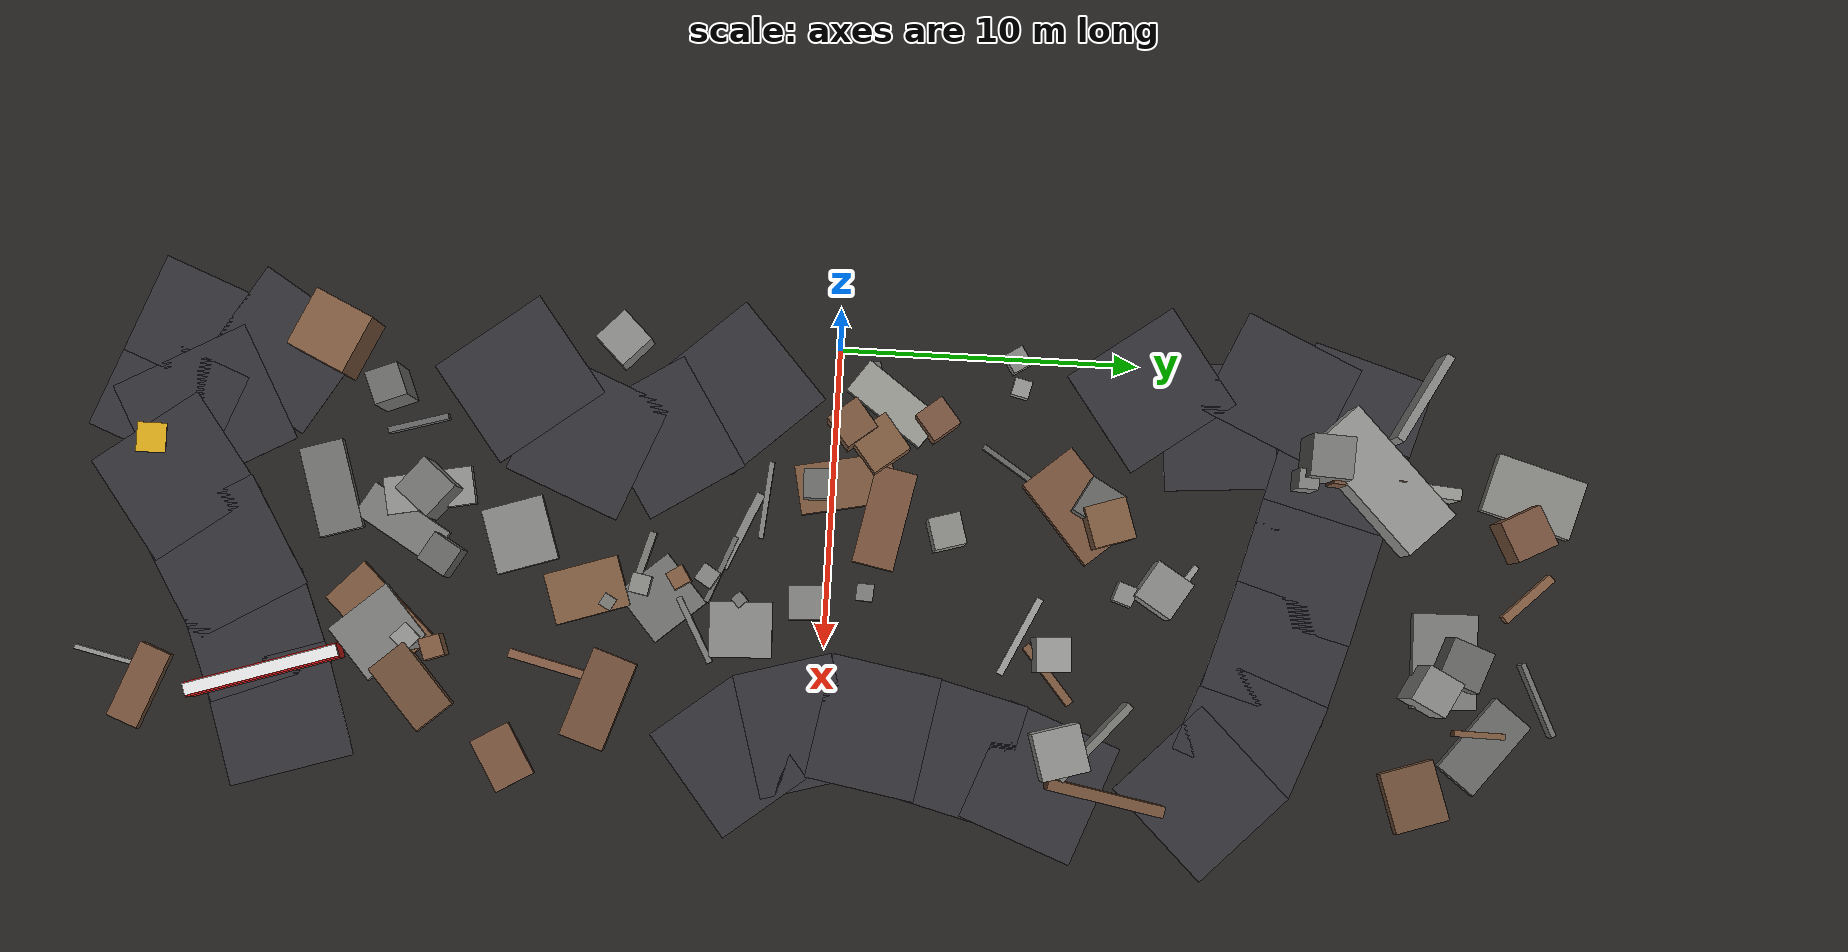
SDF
<sdf version="1.6">
 <world name="navitas_arena">
  <model name="ground_plane">
   <static>true</static>
   <link name="link">
    <collision name="collision">
     <geometry><plane><normal>0 0 1</normal><size>400 400</size></plane></geometry>
     <surface><friction><ode><mu>0.750</mu><mu2>0.750</mu2></ode></friction></surface>
    </collision>
    <visual name="visual">
     <cast_shadows>false</cast_shadows>
     <geometry><plane><normal>0 0 1</normal><size>400 400</size></plane></geometry>
     <material><ambient>0.150 0.140 0.130 1</ambient><diffuse>0.150 0.140 0.130 1</diffuse></material>
    </visual>
   </link>
  </model>
  <model name="road_orta_1_0">
   <static>true</static>
   <pose>2.955 -22.494 0.040 0 0 2.765</pose>
   <link name="link">
    <collision name="col"><geometry><box><size>3.653 4.250 0.020</size></box></geometry></collision>
    <visual name="vis">
     <geometry><box><size>3.653 4.250 0.020</size></box></geometry>
     <material><ambient>0.20 0.20 0.22 1</ambient><diffuse>0.20 0.20 0.22 1</diffuse></material>
    </visual>
   </link>
  </model>
  <model name="road_orta_1_1">
   <static>true</static>
   <pose>0.465 -21.514 0.040 0 0 2.768</pose>
   <link name="link">
    <collision name="col"><geometry><box><size>3.497 4.250 0.020</size></box></geometry></collision>
    <visual name="vis">
     <geometry><box><size>3.497 4.250 0.020</size></box></geometry>
     <material><ambient>0.20 0.20 0.22 1</ambient><diffuse>0.20 0.20 0.22 1</diffuse></material>
    </visual>
   </link>
  </model>
  <model name="road_orta_2_0">
   <static>true</static>
   <pose>3.282 -21.250 0.040 0 0 2.069</pose>
   <link name="link">
    <collision name="col"><geometry><box><size>4.885 4.250 0.020</size></box></geometry></collision>
    <visual name="vis">
     <geometry><box><size>4.885 4.250 0.020</size></box></geometry>
     <material><ambient>0.20 0.20 0.22 1</ambient><diffuse>0.20 0.20 0.22 1</diffuse></material>
    </visual>
   </link>
  </model>
  <model name="road_orta_2_1">
   <static>true</static>
   <pose>1.040 -18.696 0.040 0 0 2.584</pose>
   <link name="link">
    <collision name="col"><geometry><box><size>3.938 4.250 0.020</size></box></geometry></collision>
    <visual name="vis">
     <geometry><box><size>3.938 4.250 0.020</size></box></geometry>
     <material><ambient>0.20 0.20 0.22 1</ambient><diffuse>0.20 0.20 0.22 1</diffuse></material>
    </visual>
   </link>
  </model>
  <model name="road_orta_2_5">
   <static>true</static>
   <pose>1.578 -10.732 0.040 0 0 0.651</pose>
   <link name="link">
    <collision name="col"><geometry><box><size>3.948 4.250 0.020</size></box></geometry></collision>
    <visual name="vis">
     <geometry><box><size>3.948 4.250 0.020</size></box></geometry>
     <material><ambient>0.20 0.20 0.22 1</ambient><diffuse>0.20 0.20 0.22 1</diffuse></material>
    </visual>
   </link>
  </model>
  <model name="road_orta_2_6">
   <static>true</static>
   <pose>3.400 -8.321 0.040 0 0 1.182</pose>
   <link name="link">
    <collision name="col"><geometry><box><size>4.116 4.250 0.020</size></box></geometry></collision>
    <visual name="vis">
     <geometry><box><size>4.116 4.250 0.020</size></box></geometry>
     <material><ambient>0.20 0.20 0.22 1</ambient><diffuse>0.20 0.20 0.22 1</diffuse></material>
    </visual>
   </link>
  </model>
  <model name="road_orta_2_7">
   <static>true</static>
   <pose>3.268 -5.667 0.040 0 0 2.138</pose>
   <link name="link">
    <collision name="col"><geometry><box><size>3.666 4.250 0.020</size></box></geometry></collision>
    <visual name="vis">
     <geometry><box><size>3.666 4.250 0.020</size></box></geometry>
     <material><ambient>0.20 0.20 0.22 1</ambient><diffuse>0.20 0.20 0.22 1</diffuse></material>
    </visual>
   </link>
  </model>
  <model name="road_orta_2_8">
   <static>true</static>
   <pose>1.467 -3.333 0.040 0 0 2.307</pose>
   <link name="link">
    <collision name="col"><geometry><box><size>4.049 4.250 0.020</size></box></geometry></collision>
    <visual name="vis">
     <geometry><box><size>4.049 4.250 0.020</size></box></geometry>
     <material><ambient>0.20 0.20 0.22 1</ambient><diffuse>0.20 0.20 0.22 1</diffuse></material>
    </visual>
   </link>
  </model>
  <model name="road_orta_2_14">
   <static>true</static>
   <pose>0.761 10.541 0.040 0 0 0.631</pose>
   <link name="link">
    <collision name="col"><geometry><box><size>3.898 4.250 0.020</size></box></geometry></collision>
    <visual name="vis">
     <geometry><box><size>3.898 4.250 0.020</size></box></geometry>
     <material><ambient>0.20 0.20 0.22 1</ambient><diffuse>0.20 0.20 0.22 1</diffuse></material>
    </visual>
   </link>
  </model>
  <model name="road_orta_2_15">
   <static>true</static>
   <pose>1.862 12.875 0.040 0 0 1.646</pose>
   <link name="link">
    <collision name="col"><geometry><box><size>3.807 4.250 0.020</size></box></geometry></collision>
    <visual name="vis">
     <geometry><box><size>3.807 4.250 0.020</size></box></geometry>
     <material><ambient>0.20 0.20 0.22 1</ambient><diffuse>0.20 0.20 0.22 1</diffuse></material>
    </visual>
   </link>
  </model>
  <model name="road_orta_2_16">
   <static>true</static>
   <pose>0.492 14.896 0.040 0 0 2.716</pose>
   <link name="link">
    <collision name="col"><geometry><box><size>3.670 4.250 0.020</size></box></geometry></collision>
    <visual name="vis">
     <geometry><box><size>3.670 4.250 0.020</size></box></geometry>
     <material><ambient>0.20 0.20 0.22 1</ambient><diffuse>0.20 0.20 0.22 1</diffuse></material>
    </visual>
   </link>
  </model>
  <model name="road_orta_3_0">
   <static>true</static>
   <pose>5.495 -22.070 0.040 0 0 0.636</pose>
   <link name="link">
    <collision name="col"><geometry><box><size>4.033 4.250 0.020</size></box></geometry></collision>
    <visual name="vis">
     <geometry><box><size>4.033 4.250 0.020</size></box></geometry>
     <material><ambient>0.20 0.20 0.22 1</ambient><diffuse>0.20 0.20 0.22 1</diffuse></material>
    </visual>
   </link>
  </model>
  <model name="road_orta_3_1">
   <static>true</static>
   <pose>8.142 -20.320 0.040 0 0 0.534</pose>
   <link name="link">
    <collision name="col"><geometry><box><size>4.122 4.250 0.020</size></box></geometry></collision>
    <visual name="vis">
     <geometry><box><size>4.122 4.250 0.020</size></box></geometry>
     <material><ambient>0.20 0.20 0.22 1</ambient><diffuse>0.20 0.20 0.22 1</diffuse></material>
    </visual>
   </link>
  </model>
  <model name="road_orta_3_2">
   <static>true</static>
   <pose>10.676 -19.058 0.040 0 0 0.368</pose>
   <link name="link">
    <collision name="col"><geometry><box><size>3.359 4.250 0.020</size></box></geometry></collision>
    <visual name="vis">
     <geometry><box><size>3.359 4.250 0.020</size></box></geometry>
     <material><ambient>0.20 0.20 0.22 1</ambient><diffuse>0.20 0.20 0.22 1</diffuse></material>
    </visual>
   </link>
  </model>
  <model name="road_orta_3_3">
   <static>true</static>
   <pose>13.263 -18.160 0.040 0 0 0.306</pose>
   <link name="link">
    <collision name="col"><geometry><box><size>3.919 4.250 0.020</size></box></geometry></collision>
    <visual name="vis">
     <geometry><box><size>3.919 4.250 0.020</size></box></geometry>
     <material><ambient>0.20 0.20 0.22 1</ambient><diffuse>0.20 0.20 0.22 1</diffuse></material>
    </visual>
   </link>
  </model>
  <model name="road_orta_3_11">
   <static>true</static>
   <pose>13.849 -3.000 0.040 0 0 2.242</pose>
   <link name="link">
    <collision name="col"><geometry><box><size>3.454 4.250 0.020</size></box></geometry></collision>
    <visual name="vis">
     <geometry><box><size>3.454 4.250 0.020</size></box></geometry>
     <material><ambient>0.20 0.20 0.22 1</ambient><diffuse>0.20 0.20 0.22 1</diffuse></material>
    </visual>
   </link>
  </model>
  <model name="road_orta_3_12">
   <static>true</static>
   <pose>12.713 -0.800 0.040 0 0 1.849</pose>
   <link name="link">
    <collision name="col"><geometry><box><size>3.396 4.250 0.020</size></box></geometry></collision>
    <visual name="vis">
     <geometry><box><size>3.396 4.250 0.020</size></box></geometry>
     <material><ambient>0.20 0.20 0.22 1</ambient><diffuse>0.20 0.20 0.22 1</diffuse></material>
    </visual>
   </link>
  </model>
  <model name="road_orta_3_13">
   <static>true</static>
   <pose>12.618 1.800 0.040 0 0 1.395</pose>
   <link name="link">
    <collision name="col"><geometry><box><size>3.744 4.250 0.020</size></box></geometry></collision>
    <visual name="vis">
     <geometry><box><size>3.744 4.250 0.020</size></box></geometry>
     <material><ambient>0.20 0.20 0.22 1</ambient><diffuse>0.20 0.20 0.22 1</diffuse></material>
    </visual>
   </link>
  </model>
  <model name="road_orta_3_14">
   <static>true</static>
   <pose>13.224 4.600 0.040 0 0 1.321</pose>
   <link name="link">
    <collision name="col"><geometry><box><size>3.789 4.250 0.020</size></box></geometry></collision>
    <visual name="vis">
     <geometry><box><size>3.789 4.250 0.020</size></box></geometry>
     <material><ambient>0.20 0.20 0.22 1</ambient><diffuse>0.20 0.20 0.22 1</diffuse></material>
    </visual>
   </link>
  </model>
  <model name="road_orta_3_15">
   <static>true</static>
   <pose>14.140 7.460 0.040 0 0 1.205</pose>
   <link name="link">
    <collision name="col"><geometry><box><size>4.027 4.250 0.020</size></box></geometry></collision>
    <visual name="vis">
     <geometry><box><size>4.027 4.250 0.020</size></box></geometry>
     <material><ambient>0.20 0.20 0.22 1</ambient><diffuse>0.20 0.20 0.22 1</diffuse></material>
    </visual>
   </link>
  </model>
  <model name="road_orta_3_17">
   <static>true</static>
   <pose>14.214 12.872 0.040 0 0 2.372</pose>
   <link name="link">
    <collision name="col"><geometry><box><size>4.097 4.250 0.020</size></box></geometry></collision>
    <visual name="vis">
     <geometry><box><size>4.097 4.250 0.020</size></box></geometry>
     <material><ambient>0.20 0.20 0.22 1</ambient><diffuse>0.20 0.20 0.22 1</diffuse></material>
    </visual>
   </link>
  </model>
  <model name="road_orta_3_18">
   <static>true</static>
   <pose>11.915 14.423 0.040 0 0 2.777</pose>
   <link name="link">
    <collision name="col"><geometry><box><size>3.362 4.250 0.020</size></box></geometry></collision>
    <visual name="vis">
     <geometry><box><size>3.362 4.250 0.020</size></box></geometry>
     <material><ambient>0.20 0.20 0.22 1</ambient><diffuse>0.20 0.20 0.22 1</diffuse></material>
    </visual>
   </link>
  </model>
  <model name="road_orta_3_19">
   <static>true</static>
   <pose>9.399 15.263 0.040 0 0 2.857</pose>
   <link name="link">
    <collision name="col"><geometry><box><size>3.747 4.250 0.020</size></box></geometry></collision>
    <visual name="vis">
     <geometry><box><size>3.747 4.250 0.020</size></box></geometry>
     <material><ambient>0.20 0.20 0.22 1</ambient><diffuse>0.20 0.20 0.22 1</diffuse></material>
    </visual>
   </link>
  </model>
  <model name="road_orta_3_20">
   <static>true</static>
   <pose>6.593 16.038 0.040 0 0 2.887</pose>
   <link name="link">
    <collision name="col"><geometry><box><size>3.875 4.250 0.020</size></box></geometry></collision>
    <visual name="vis">
     <geometry><box><size>3.875 4.250 0.020</size></box></geometry>
     <material><ambient>0.20 0.20 0.22 1</ambient><diffuse>0.20 0.20 0.22 1</diffuse></material>
    </visual>
   </link>
  </model>
  <model name="road_orta_3_21">
   <static>true</static>
   <pose>3.784 16.775 0.040 0 0 2.883</pose>
   <link name="link">
    <collision name="col"><geometry><box><size>3.734 4.250 0.020</size></box></geometry></collision>
    <visual name="vis">
     <geometry><box><size>3.734 4.250 0.020</size></box></geometry>
     <material><ambient>0.20 0.20 0.22 1</ambient><diffuse>0.20 0.20 0.22 1</diffuse></material>
    </visual>
   </link>
  </model>
  <model name="road_orta_3_22">
   <static>true</static>
   <pose>1.140 17.522 0.040 0 0 2.849</pose>
   <link name="link">
    <collision name="col"><geometry><box><size>3.562 4.250 0.020</size></box></geometry></collision>
    <visual name="vis">
     <geometry><box><size>3.562 4.250 0.020</size></box></geometry>
     <material><ambient>0.20 0.20 0.22 1</ambient><diffuse>0.20 0.20 0.22 1</diffuse></material>
    </visual>
   </link>
  </model>
  <model name="bar_orta_3">
   <static>true</static>
   <pose>11.823 -18.615 0.500 0 0 1.880</pose>
   <link name="link">
    <collision name="col"><geometry><box><size>5.250 0.500 1.000</size></box></geometry></collision>
    <visual name="vis">
     <geometry><box><size>5.250 0.500 1.000</size></box></geometry>
     <material><ambient>0.85 0.10 0.10 1</ambient><diffuse>0.85 0.10 0.10 1</diffuse></material>
    </visual>
   </link>
  </model>
  <model name="bar_orta_3b">
   <static>true</static>
   <pose>11.823 -18.615 1.000 0 0 1.880</pose>
   <link name="link">
    <collision name="col"><geometry><box><size>5.250 0.400 0.300</size></box></geometry></collision>
    <visual name="vis">
     <geometry><box><size>5.250 0.400 0.300</size></box></geometry>
     <material><ambient>0.95 0.95 0.95 1</ambient><diffuse>0.95 0.95 0.95 1</diffuse></material>
    </visual>
   </link>
  </model>
  <model name="blk_orta_3_1_0">
   <static>true</static>
   <pose>14.470 9.561 0.800 0 0 1.386</pose>
   <link name="link">
    <collision name="col"><geometry><box><size>3.939 0.383 1.600</size></box></geometry></collision>
    <visual name="vis">
     <geometry><box><size>3.939 0.383 1.600</size></box></geometry>
     <material><ambient>0.47 0.33 0.23 1</ambient><diffuse>0.47 0.33 0.23 1</diffuse></material>
    </visual>
   </link>
  </model>
  <model name="blk_orta_3_1_3">
   <static>true</static>
   <pose>12.672 9.115 0.800 0 0 2.434</pose>
   <link name="link">
    <collision name="col"><geometry><box><size>3.417 0.253 1.600</size></box></geometry></collision>
    <visual name="vis">
     <geometry><box><size>3.417 0.253 1.600</size></box></geometry>
     <material><ambient>0.48 0.48 0.47 1</ambient><diffuse>0.48 0.48 0.47 1</diffuse></material>
    </visual>
   </link>
  </model>
  <model name="blk_orta_3_1_4">
   <static>true</static>
   <pose>13.255 8.412 0.800 0 0 1.700</pose>
   <link name="link">
    <collision name="col"><geometry><box><size>0.698 0.698 1.600</size></box></geometry></collision>
    <visual name="vis">
     <geometry><box><size>0.698 0.698 1.600</size></box></geometry>
     <material><ambient>0.57 0.57 0.55 1</ambient><diffuse>0.57 0.57 0.55 1</diffuse></material>
    </visual>
   </link>
  </model>
  <model name="blk_orta_3_1_5">
   <static>true</static>
   <pose>13.051 7.985 0.886 0 0 0.287</pose>
   <link name="link">
    <collision name="col"><geometry><box><size>1.626 1.626 1.772</size></box></geometry></collision>
    <visual name="vis">
     <geometry><box><size>1.626 1.626 1.772</size></box></geometry>
     <material><ambient>0.58 0.58 0.57 1</ambient><diffuse>0.58 0.58 0.57 1</diffuse></material>
    </visual>
   </link>
  </model>
  <model name="blk_orta_3_2_0">
   <static>true</static>
   <pose>3.565 15.712 0.800 0 0 1.520</pose>
   <link name="link">
    <collision name="col"><geometry><box><size>0.675 0.675 1.600</size></box></geometry></collision>
    <visual name="vis">
     <geometry><box><size>0.675 0.675 1.600</size></box></geometry>
     <material><ambient>0.52 0.52 0.51 1</ambient><diffuse>0.52 0.52 0.51 1</diffuse></material>
    </visual>
   </link>
  </model>
  <model name="blk_orta_3_2_1">
   <static>true</static>
   <pose>3.709 19.483 0.800 0 0 1.490</pose>
   <link name="link">
    <collision name="col"><geometry><box><size>2.583 0.400 1.600</size></box></geometry></collision>
    <visual name="vis">
     <geometry><box><size>2.583 0.400 1.600</size></box></geometry>
     <material><ambient>0.61 0.61 0.60 1</ambient><diffuse>0.61 0.61 0.60 1</diffuse></material>
    </visual>
   </link>
  </model>
  <model name="blk_orta_3_2_2">
   <static>true</static>
   <pose>3.475 18.196 0.800 0 0 0.775</pose>
   <link name="link">
    <collision name="col"><geometry><box><size>4.833 2.029 1.600</size></box></geometry></collision>
    <visual name="vis">
     <geometry><box><size>4.833 2.029 1.600</size></box></geometry>
     <material><ambient>0.60 0.60 0.59 1</ambient><diffuse>0.60 0.60 0.59 1</diffuse></material>
    </visual>
   </link>
  </model>
  <model name="blk_orta_3_2_3">
   <static>true</static>
   <pose>3.565 17.745 0.800 0 0 1.488</pose>
   <link name="link">
    <collision name="col"><geometry><box><size>2.397 0.398 1.600</size></box></geometry></collision>
    <visual name="vis">
     <geometry><box><size>2.397 0.398 1.600</size></box></geometry>
     <material><ambient>0.47 0.33 0.24 1</ambient><diffuse>0.47 0.33 0.24 1</diffuse></material>
    </visual>
   </link>
  </model>
  <model name="blk_orta_3_2_5">
   <static>true</static>
   <pose>2.847 16.316 1.238 0 0 3.096</pose>
   <link name="link">
    <collision name="col"><geometry><box><size>1.408 1.408 2.475</size></box></geometry></collision>
    <visual name="vis">
     <geometry><box><size>1.408 1.408 2.475</size></box></geometry>
     <material><ambient>0.49 0.49 0.48 1</ambient><diffuse>0.49 0.49 0.48 1</diffuse></material>
    </visual>
   </link>
  </model>
  <model name="deb_orta_3">
   <static>true</static>
   <pose>9.289 6.531 0.168 0 0 2.697</pose>
   <link name="link">
    <collision name="col"><geometry><box><size>2.876 0.236 0.335</size></box></geometry></collision>
    <visual name="vis">
     <geometry><box><size>2.876 0.236 0.335</size></box></geometry>
     <material><ambient>0.62 0.62 0.61 1</ambient><diffuse>0.62 0.62 0.61 1</diffuse></material>
    </visual>
   </link>
  </model>
  <model name="deb_orta_4">
   <static>true</static>
   <pose>9.332 20.753 0.192 0 0 0.024</pose>
   <link name="link">
    <collision name="col"><geometry><box><size>3.191 2.165 0.384</size></box></geometry></collision>
    <visual name="vis">
     <geometry><box><size>3.191 2.165 0.384</size></box></geometry>
     <material><ambient>0.49 0.49 0.48 1</ambient><diffuse>0.49 0.49 0.48 1</diffuse></material>
    </visual>
   </link>
  </model>
  <model name="deb_orta_6">
   <static>true</static>
   <pose>7.511 11.151 0.743 0 0 1.013</pose>
   <link name="link">
    <collision name="col"><geometry><box><size>1.412 1.412 1.487</size></box></geometry></collision>
    <visual name="vis">
     <geometry><box><size>1.412 1.412 1.487</size></box></geometry>
     <material><ambient>0.55 0.55 0.54 1</ambient><diffuse>0.55 0.55 0.54 1</diffuse></material>
    </visual>
   </link>
  </model>
  <model name="deb_orta_9">
   <static>true</static>
   <pose>8.596 -0.686 0.944 0 0 0.043</pose>
   <link name="link">
    <collision name="col"><geometry><box><size>1.121 1.121 1.889</size></box></geometry></collision>
    <visual name="vis">
     <geometry><box><size>1.121 1.121 1.889</size></box></geometry>
     <material><ambient>0.52 0.52 0.51 1</ambient><diffuse>0.52 0.52 0.51 1</diffuse></material>
    </visual>
   </link>
  </model>
  <model name="deb_orta_20">
   <static>true</static>
   <pose>2.574 0.529 1.008 0 0 2.235</pose>
   <link name="link">
    <collision name="col"><geometry><box><size>1.199 1.199 2.016</size></box></geometry></collision>
    <visual name="vis">
     <geometry><box><size>1.199 1.199 2.016</size></box></geometry>
     <material><ambient>0.50 0.35 0.25 1</ambient><diffuse>0.50 0.35 0.25 1</diffuse></material>
    </visual>
   </link>
  </model>
  <model name="deb_orta_28">
   <static>true</static>
   <pose>6.822 -10.383 0.206 0 0 0.314</pose>
   <link name="link">
    <collision name="col"><geometry><box><size>2.205 2.105 0.412</size></box></geometry></collision>
    <visual name="vis">
     <geometry><box><size>2.205 2.105 0.412</size></box></geometry>
     <material><ambient>0.54 0.54 0.53 1</ambient><diffuse>0.54 0.54 0.53 1</diffuse></material>
    </visual>
   </link>
  </model>
  <model name="deb_orta_29">
   <static>true</static>
   <pose>1.752 1.912 0.270 0 0 0.944</pose>
   <link name="link">
    <collision name="col"><geometry><box><size>3.099 1.271 0.539</size></box></geometry></collision>
    <visual name="vis">
     <geometry><box><size>3.099 1.271 0.539</size></box></geometry>
     <material><ambient>0.62 0.62 0.60 1</ambient><diffuse>0.62 0.62 0.60 1</diffuse></material>
    </visual>
   </link>
  </model>
  <model name="deb_orta_31">
   <static>true</static>
   <pose>3.756 6.189 0.123 0 0 0.998</pose>
   <link name="link">
    <collision name="col"><geometry><box><size>2.865 0.181 0.246</size></box></geometry></collision>
    <visual name="vis">
     <geometry><box><size>2.865 0.181 0.246</size></box></geometry>
     <material><ambient>0.40 0.40 0.39 1</ambient><diffuse>0.40 0.40 0.39 1</diffuse></material>
    </visual>
   </link>
  </model>
  <model name="deb_orta_32">
   <static>true</static>
   <pose>4.963 23.095 0.752 0 0 2.059</pose>
   <link name="link">
    <collision name="col"><geometry><box><size>1.445 1.445 1.503</size></box></geometry></collision>
    <visual name="vis">
     <geometry><box><size>1.445 1.445 1.503</size></box></geometry>
     <material><ambient>0.48 0.33 0.24 1</ambient><diffuse>0.48 0.33 0.24 1</diffuse></material>
    </visual>
   </link>
  </model>
  <model name="deb_orta_35">
   <static>true</static>
   <pose>3.278 -13.989 0.241 0 0 1.854</pose>
   <link name="link">
    <collision name="col"><geometry><box><size>2.072 0.193 0.483</size></box></geometry></collision>
    <visual name="vis">
     <geometry><box><size>2.072 0.193 0.483</size></box></geometry>
     <material><ambient>0.41 0.41 0.41 1</ambient><diffuse>0.41 0.41 0.41 1</diffuse></material>
    </visual>
   </link>
  </model>
  <model name="deb_orta_37">
   <static>true</static>
   <pose>9.437 21.170 0.882 0 0 2.792</pose>
   <link name="link">
    <collision name="col"><geometry><box><size>1.428 1.428 1.764</size></box></geometry></collision>
    <visual name="vis">
     <geometry><box><size>1.428 1.428 1.764</size></box></geometry>
     <material><ambient>0.41 0.41 0.40 1</ambient><diffuse>0.41 0.41 0.40 1</diffuse></material>
    </visual>
   </link>
  </model>
  <model name="deb_orta_38">
   <static>true</static>
   <pose>5.993 3.838 1.123 0 0 0.279</pose>
   <link name="link">
    <collision name="col"><geometry><box><size>1.069 1.069 2.245</size></box></geometry></collision>
    <visual name="vis">
     <geometry><box><size>1.069 1.069 2.245</size></box></geometry>
     <material><ambient>0.56 0.56 0.54 1</ambient><diffuse>0.56 0.56 0.54 1</diffuse></material>
    </visual>
   </link>
  </model>
  <model name="deb_orta_39">
   <static>true</static>
   <pose>7.339 -6.154 0.229 0 0 2.861</pose>
   <link name="link">
    <collision name="col"><geometry><box><size>1.776 0.245 0.457</size></box></geometry></collision>
    <visual name="vis">
     <geometry><box><size>1.776 0.245 0.457</size></box></geometry>
     <material><ambient>0.48 0.48 0.47 1</ambient><diffuse>0.48 0.48 0.47 1</diffuse></material>
    </visual>
   </link>
  </model>
  <model name="deb_orta_40">
   <static>true</static>
   <pose>7.972 -4.964 0.494 0 0 2.142</pose>
   <link name="link">
    <collision name="col"><geometry><box><size>0.619 0.619 0.988</size></box></geometry></collision>
    <visual name="vis">
     <geometry><box><size>0.619 0.619 0.988</size></box></geometry>
     <material><ambient>0.53 0.37 0.26 1</ambient><diffuse>0.53 0.37 0.26 1</diffuse></material>
    </visual>
   </link>
  </model>
  <model name="deb_orta_45">
   <static>true</static>
   <pose>12.102 -13.717 0.280 0 0 0.722</pose>
   <link name="link">
    <collision name="col"><geometry><box><size>2.625 1.500 0.561</size></box></geometry></collision>
    <visual name="vis">
     <geometry><box><size>2.625 1.500 0.561</size></box></geometry>
     <material><ambient>0.45 0.32 0.23 1</ambient><diffuse>0.45 0.32 0.23 1</diffuse></material>
    </visual>
   </link>
  </model>
  <model name="deb_orta_48">
   <static>true</static>
   <pose>7.869 -3.993 0.539 0 0 2.595</pose>
   <link name="link">
    <collision name="col"><geometry><box><size>0.635 0.635 1.078</size></box></geometry></collision>
    <visual name="vis">
     <geometry><box><size>0.635 0.635 1.078</size></box></geometry>
     <material><ambient>0.53 0.53 0.52 1</ambient><diffuse>0.53 0.53 0.52 1</diffuse></material>
    </visual>
   </link>
  </model>
  <model name="deb_orta_50">
   <static>true</static>
   <pose>10.521 7.528 0.199 0 0 0.698</pose>
   <link name="link">
    <collision name="col"><geometry><box><size>2.435 0.281 0.398</size></box></geometry></collision>
    <visual name="vis">
     <geometry><box><size>2.435 0.281 0.398</size></box></geometry>
     <material><ambient>0.50 0.35 0.25 1</ambient><diffuse>0.50 0.35 0.25 1</diffuse></material>
    </visual>
   </link>
  </model>
  <model name="deb_orta_53">
   <static>true</static>
   <pose>7.080 23.462 0.193 0 0 2.350</pose>
   <link name="link">
    <collision name="col"><geometry><box><size>2.125 0.297 0.385</size></box></geometry></collision>
    <visual name="vis">
     <geometry><box><size>2.125 0.297 0.385</size></box></geometry>
     <material><ambient>0.54 0.38 0.27 1</ambient><diffuse>0.54 0.38 0.27 1</diffuse></material>
    </visual>
   </link>
  </model>
  <model name="deb_orta_56">
   <static>true</static>
   <pose>8.679 -5.523 0.166 0 0 0.714</pose>
   <link name="link">
    <collision name="col"><geometry><box><size>2.101 2.167 0.332</size></box></geometry></collision>
    <visual name="vis">
     <geometry><box><size>2.101 2.167 0.332</size></box></geometry>
     <material><ambient>0.46 0.46 0.45 1</ambient><diffuse>0.46 0.46 0.45 1</diffuse></material>
    </visual>
   </link>
  </model>
  <model name="deb_orta_58">
   <static>true</static>
   <pose>3.653 23.469 0.245 0 0 1.293</pose>
   <link name="link">
    <collision name="col"><geometry><box><size>3.099 2.005 0.491</size></box></geometry></collision>
    <visual name="vis">
     <geometry><box><size>3.099 2.005 0.491</size></box></geometry>
     <material><ambient>0.55 0.55 0.53 1</ambient><diffuse>0.55 0.55 0.53 1</diffuse></material>
    </visual>
   </link>
  </model>
  <model name="deb_orta_63">
   <static>true</static>
   <pose>7.296 11.864 0.218 0 0 2.552</pose>
   <link name="link">
    <collision name="col"><geometry><box><size>1.629 0.207 0.436</size></box></geometry></collision>
    <visual name="vis">
     <geometry><box><size>1.629 0.207 0.436</size></box></geometry>
     <material><ambient>0.60 0.60 0.59 1</ambient><diffuse>0.60 0.60 0.59 1</diffuse></material>
    </visual>
   </link>
  </model>
  <model name="deb_orta_66">
   <static>true</static>
   <pose>11.633 -23.953 0.167 0 0 1.352</pose>
   <link name="link">
    <collision name="col"><geometry><box><size>2.230 0.159 0.334</size></box></geometry></collision>
    <visual name="vis">
     <geometry><box><size>2.230 0.159 0.334</size></box></geometry>
     <material><ambient>0.59 0.59 0.58 1</ambient><diffuse>0.59 0.59 0.58 1</diffuse></material>
    </visual>
   </link>
  </model>
  <model name="deb_orta_68">
   <static>true</static>
   <pose>11.713 22.010 0.269 0 0 1.554</pose>
   <link name="link">
    <collision name="col"><geometry><box><size>1.702 0.204 0.537</size></box></geometry></collision>
    <visual name="vis">
     <geometry><box><size>1.702 0.204 0.537</size></box></geometry>
     <material><ambient>0.50 0.35 0.25 1</ambient><diffuse>0.50 0.35 0.25 1</diffuse></material>
    </visual>
   </link>
  </model>
  <model name="deb_orta_70">
   <static>true</static>
   <pose>0.983 6.136 0.307 0 0 1.333</pose>
   <link name="link">
    <collision name="col"><geometry><box><size>0.588 0.588 0.614</size></box></geometry></collision>
    <visual name="vis">
     <geometry><box><size>0.588 0.588 0.614</size></box></geometry>
     <material><ambient>0.60 0.60 0.59 1</ambient><diffuse>0.60 0.60 0.59 1</diffuse></material>
    </visual>
   </link>
  </model>
  <model name="deb_orta_73">
   <static>true</static>
   <pose>5.403 9.180 1.007 0 0 0.316</pose>
   <link name="link">
    <collision name="col"><geometry><box><size>1.405 1.405 2.015</size></box></geometry></collision>
    <visual name="vis">
     <geometry><box><size>1.405 1.405 2.015</size></box></geometry>
     <material><ambient>0.52 0.37 0.26 1</ambient><diffuse>0.52 0.37 0.26 1</diffuse></material>
    </visual>
   </link>
  </model>
  <model name="deb_orta_74">
   <static>true</static>
   <pose>10.690 -13.657 0.219 0 0 1.756</pose>
   <link name="link">
    <collision name="col"><geometry><box><size>1.774 0.300 0.438</size></box></geometry></collision>
    <visual name="vis">
     <geometry><box><size>1.774 0.300 0.438</size></box></geometry>
     <material><ambient>0.41 0.41 0.40 1</ambient><diffuse>0.41 0.41 0.40 1</diffuse></material>
    </visual>
   </link>
  </model>
  <model name="deb_orta_83">
   <static>true</static>
   <pose>4.500 0.434 0.267 0 0 1.768</pose>
   <link name="link">
    <collision name="col"><geometry><box><size>3.257 1.654 0.535</size></box></geometry></collision>
    <visual name="vis">
     <geometry><box><size>3.257 1.654 0.535</size></box></geometry>
     <material><ambient>0.50 0.35 0.25 1</ambient><diffuse>0.50 0.35 0.25 1</diffuse></material>
    </visual>
   </link>
  </model>
  <model name="deb_orta_86">
   <static>true</static>
   <pose>10.345 -14.946 0.231 0 0 2.290</pose>
   <link name="link">
    <collision name="col"><geometry><box><size>2.448 2.180 0.463</size></box></geometry></collision>
    <visual name="vis">
     <geometry><box><size>2.448 2.180 0.463</size></box></geometry>
     <material><ambient>0.50 0.50 0.49 1</ambient><diffuse>0.50 0.50 0.49 1</diffuse></material>
    </visual>
   </link>
  </model>
  <model name="deb_orta_90">
   <static>true</static>
   <pose>6.272 -2.953 0.135 0 0 2.723</pose>
   <link name="link">
    <collision name="col"><geometry><box><size>2.797 0.286 0.271</size></box></geometry></collision>
    <visual name="vis">
     <geometry><box><size>2.797 0.286 0.271</size></box></geometry>
     <material><ambient>0.53 0.53 0.52 1</ambient><diffuse>0.53 0.53 0.52 1</diffuse></material>
    </visual>
   </link>
  </model>
  <model name="deb_orta_96">
   <static>true</static>
   <pose>7.661 -12.869 0.743 0 0 2.607</pose>
   <link name="link">
    <collision name="col"><geometry><box><size>1.070 1.070 1.486</size></box></geometry></collision>
    <visual name="vis">
     <geometry><box><size>1.070 1.070 1.486</size></box></geometry>
     <material><ambient>0.42 0.42 0.41 1</ambient><diffuse>0.42 0.42 0.41 1</diffuse></material>
    </visual>
   </link>
  </model>
  <model name="deb_orta_101">
   <static>true</static>
   <pose>5.590 1.788 0.280 0 0 2.944</pose>
   <link name="link">
    <collision name="col"><geometry><box><size>3.335 1.412 0.561</size></box></geometry></collision>
    <visual name="vis">
     <geometry><box><size>3.335 1.412 0.561</size></box></geometry>
     <material><ambient>0.49 0.34 0.24 1</ambient><diffuse>0.49 0.34 0.24 1</diffuse></material>
    </visual>
   </link>
  </model>
  <model name="deb_orta_102">
   <static>true</static>
   <pose>4.771 8.857 0.802 0 0 1.061</pose>
   <link name="link">
    <collision name="col"><geometry><box><size>1.303 1.303 1.604</size></box></geometry></collision>
    <visual name="vis">
     <geometry><box><size>1.303 1.303 1.604</size></box></geometry>
     <material><ambient>0.41 0.41 0.40 1</ambient><diffuse>0.41 0.41 0.40 1</diffuse></material>
    </visual>
   </link>
  </model>
  <model name="deb_orta_113">
   <static>true</static>
   <pose>9.845 7.532 1.097 0 0 1.637</pose>
   <link name="link">
    <collision name="col"><geometry><box><size>1.148 1.148 2.194</size></box></geometry></collision>
    <visual name="vis">
     <geometry><box><size>1.148 1.148 2.194</size></box></geometry>
     <material><ambient>0.62 0.62 0.61 1</ambient><diffuse>0.62 0.62 0.61 1</diffuse></material>
    </visual>
   </link>
  </model>
  <model name="deb_orta_116">
   <static>true</static>
   <pose>2.197 -14.816 1.227 0 0 0.381</pose>
   <link name="link">
    <collision name="col"><geometry><box><size>1.118 1.118 2.454</size></box></geometry></collision>
    <visual name="vis">
     <geometry><box><size>1.118 1.118 2.454</size></box></geometry>
     <material><ambient>0.44 0.44 0.43 1</ambient><diffuse>0.44 0.44 0.43 1</diffuse></material>
    </visual>
   </link>
  </model>
  <model name="deb_orta_117">
   <static>true</static>
   <pose>10.744 -13.014 0.530 0 0 0.339</pose>
   <link name="link">
    <collision name="col"><geometry><box><size>0.720 0.720 1.059</size></box></geometry></collision>
    <visual name="vis">
     <geometry><box><size>0.720 0.720 1.059</size></box></geometry>
     <material><ambient>0.53 0.37 0.26 1</ambient><diffuse>0.53 0.37 0.26 1</diffuse></material>
    </visual>
   </link>
  </model>
  <model name="deb_orta_126">
   <static>true</static>
   <pose>13.895 19.924 0.287 0 0 1.892</pose>
   <link name="link">
    <collision name="col"><geometry><box><size>1.843 2.079 0.573</size></box></geometry></collision>
    <visual name="vis">
     <geometry><box><size>1.843 2.079 0.573</size></box></geometry>
     <material><ambient>0.45 0.32 0.23 1</ambient><diffuse>0.45 0.32 0.23 1</diffuse></material>
    </visual>
   </link>
  </model>
  <model name="deb_orta_132">
   <static>true</static>
   <pose>9.681 -4.364 0.218 0 0 0.500</pose>
   <link name="link">
    <collision name="col"><geometry><box><size>2.427 0.206 0.437</size></box></geometry></collision>
    <visual name="vis">
     <geometry><box><size>2.427 0.206 0.437</size></box></geometry>
     <material><ambient>0.49 0.49 0.48 1</ambient><diffuse>0.49 0.49 0.48 1</diffuse></material>
    </visual>
   </link>
  </model>
  <model name="deb_orta_136">
   <static>true</static>
   <pose>12.105 22.202 0.220 0 0 2.484</pose>
   <link name="link">
    <collision name="col"><geometry><box><size>3.004 1.524 0.440</size></box></geometry></collision>
    <visual name="vis">
     <geometry><box><size>3.004 1.524 0.440</size></box></geometry>
     <material><ambient>0.42 0.42 0.41 1</ambient><diffuse>0.42 0.42 0.41 1</diffuse></material>
    </visual>
   </link>
  </model>
  <model name="deb_orta_140">
   <static>true</static>
   <pose>5.519 -13.484 0.239 0 0 1.761</pose>
   <link name="link">
    <collision name="col"><geometry><box><size>2.984 1.261 0.477</size></box></geometry></collision>
    <visual name="vis">
     <geometry><box><size>2.984 1.261 0.477</size></box></geometry>
     <material><ambient>0.59 0.59 0.58 1</ambient><diffuse>0.59 0.59 0.58 1</diffuse></material>
    </visual>
   </link>
  </model>
  <model name="deb_orta_145">
   <static>true</static>
   <pose>4.846 8.232 0.297 0 0 0.711</pose>
   <link name="link">
    <collision name="col"><geometry><box><size>3.410 2.068 0.593</size></box></geometry></collision>
    <visual name="vis">
     <geometry><box><size>3.410 2.068 0.593</size></box></geometry>
     <material><ambient>0.48 0.34 0.24 1</ambient><diffuse>0.48 0.34 0.24 1</diffuse></material>
    </visual>
   </link>
  </model>
  <model name="deb_orta_146">
   <static>true</static>
   <pose>10.349 20.147 1.136 0 0 1.096</pose>
   <link name="link">
    <collision name="col"><geometry><box><size>1.287 1.287 2.271</size></box></geometry></collision>
    <visual name="vis">
     <geometry><box><size>1.287 1.287 2.271</size></box></geometry>
     <material><ambient>0.55 0.55 0.54 1</ambient><diffuse>0.55 0.55 0.54 1</diffuse></material>
    </visual>
   </link>
  </model>
  <model name="deb_orta_162">
   <static>true</static>
   <pose>12.174 -7.430 0.291 0 0 2.817</pose>
   <link name="link">
    <collision name="col"><geometry><box><size>3.109 1.543 0.583</size></box></geometry></collision>
    <visual name="vis">
     <geometry><box><size>3.109 1.543 0.583</size></box></geometry>
     <material><ambient>0.46 0.32 0.23 1</ambient><diffuse>0.46 0.32 0.23 1</diffuse></material>
    </visual>
   </link>
  </model>
  <model name="deb_orta_176">
   <static>true</static>
   <pose>5.196 -2.206 0.180 0 0 3.048</pose>
   <link name="link">
    <collision name="col"><geometry><box><size>2.592 0.179 0.361</size></box></geometry></collision>
    <visual name="vis">
     <geometry><box><size>2.592 0.179 0.361</size></box></geometry>
     <material><ambient>0.51 0.51 0.50 1</ambient><diffuse>0.51 0.51 0.50 1</diffuse></material>
    </visual>
   </link>
  </model>
  <model name="deb_orta_178">
   <static>true</static>
   <pose>10.465 -13.983 0.277 0 0 2.401</pose>
   <link name="link">
    <collision name="col"><geometry><box><size>0.715 0.715 0.553</size></box></geometry></collision>
    <visual name="vis">
     <geometry><box><size>0.715 0.715 0.553</size></box></geometry>
     <material><ambient>0.60 0.60 0.59 1</ambient><diffuse>0.60 0.60 0.59 1</diffuse></material>
    </visual>
   </link>
  </model>
  <model name="deb_orta_185">
   <static>true</static>
   <pose>6.652 -14.336 0.202 0 0 1.030</pose>
   <link name="link">
    <collision name="col"><geometry><box><size>3.015 1.256 0.403</size></box></geometry></collision>
    <visual name="vis">
     <geometry><box><size>3.015 1.256 0.403</size></box></geometry>
     <material><ambient>0.49 0.49 0.48 1</ambient><diffuse>0.49 0.49 0.48 1</diffuse></material>
    </visual>
   </link>
  </model>
  <model name="deb_orta_186">
   <static>true</static>
   <pose>9.587 -2.820 0.231 0 0 0.032</pose>
   <link name="link">
    <collision name="col"><geometry><box><size>1.867 2.106 0.461</size></box></geometry></collision>
    <visual name="vis">
     <geometry><box><size>1.867 2.106 0.461</size></box></geometry>
     <material><ambient>0.55 0.55 0.54 1</ambient><diffuse>0.55 0.55 0.54 1</diffuse></material>
    </visual>
   </link>
  </model>
  <model name="deb_orta_189">
   <static>true</static>
   <pose>2.254 3.363 0.719 0 0 0.676</pose>
   <link name="link">
    <collision name="col"><geometry><box><size>1.077 1.077 1.437</size></box></geometry></collision>
    <visual name="vis">
     <geometry><box><size>1.077 1.077 1.437</size></box></geometry>
     <material><ambient>0.49 0.34 0.25 1</ambient><diffuse>0.49 0.34 0.25 1</diffuse></material>
    </visual>
   </link>
  </model>
  <model name="deb_orta_192">
   <static>true</static>
   <pose>8.598 -2.894 0.497 0 0 0.742</pose>
   <link name="link">
    <collision name="col"><geometry><box><size>0.403 0.403 0.994</size></box></geometry></collision>
    <visual name="vis">
     <geometry><box><size>0.403 0.403 0.994</size></box></geometry>
     <material><ambient>0.47 0.47 0.46 1</ambient><diffuse>0.47 0.47 0.46 1</diffuse></material>
    </visual>
   </link>
  </model>
  <model name="deb_orta_193">
   <static>true</static>
   <pose>9.821 -14.920 0.175 0 0 0.806</pose>
   <link name="link">
    <collision name="col"><geometry><box><size>3.392 1.768 0.349</size></box></geometry></collision>
    <visual name="vis">
     <geometry><box><size>3.392 1.768 0.349</size></box></geometry>
     <material><ambient>0.50 0.35 0.25 1</ambient><diffuse>0.50 0.35 0.25 1</diffuse></material>
    </visual>
   </link>
  </model>
  <model name="deb_orta_194">
   <static>true</static>
   <pose>12.552 -22.791 0.222 0 0 2.768</pose>
   <link name="link">
    <collision name="col"><geometry><box><size>2.697 1.105 0.444</size></box></geometry></collision>
    <visual name="vis">
     <geometry><box><size>2.697 1.105 0.444</size></box></geometry>
     <material><ambient>0.48 0.34 0.24 1</ambient><diffuse>0.48 0.34 0.24 1</diffuse></material>
    </visual>
   </link>
  </model>
  <model name="deb_orta_200">
   <static>true</static>
   <pose>7.700 9.923 0.452 0 0 2.811</pose>
   <link name="link">
    <collision name="col"><geometry><box><size>0.669 0.669 0.903</size></box></geometry></collision>
    <visual name="vis">
     <geometry><box><size>0.669 0.669 0.903</size></box></geometry>
     <material><ambient>0.56 0.56 0.55 1</ambient><diffuse>0.56 0.56 0.55 1</diffuse></material>
    </visual>
   </link>
  </model>
  <model name="deb_orta_202">
   <static>true</static>
   <pose>7.607 -3.581 0.255 0 0 2.763</pose>
   <link name="link">
    <collision name="col"><geometry><box><size>2.381 0.178 0.509</size></box></geometry></collision>
    <visual name="vis">
     <geometry><box><size>2.381 0.178 0.509</size></box></geometry>
     <material><ambient>0.43 0.43 0.42 1</ambient><diffuse>0.43 0.43 0.42 1</diffuse></material>
    </visual>
   </link>
  </model>
  <model name="deb_orta_206">
   <static>true</static>
   <pose>10.446 23.882 0.302 0 0 0.445</pose>
   <link name="link">
    <collision name="col"><geometry><box><size>2.634 0.173 0.603</size></box></geometry></collision>
    <visual name="vis">
     <geometry><box><size>2.634 0.173 0.603</size></box></geometry>
     <material><ambient>0.44 0.44 0.43 1</ambient><diffuse>0.44 0.44 0.43 1</diffuse></material>
    </visual>
   </link>
  </model>
  <model name="deb_orta_208">
   <static>true</static>
   <pose>14.296 -10.544 0.162 0 0 0.535</pose>
   <link name="link">
    <collision name="col"><geometry><box><size>1.911 1.424 0.323</size></box></geometry></collision>
    <visual name="vis">
     <geometry><box><size>1.911 1.424 0.323</size></box></geometry>
     <material><ambient>0.48 0.34 0.24 1</ambient><diffuse>0.48 0.34 0.24 1</diffuse></material>
    </visual>
   </link>
  </model>
  <model name="deb_orta_213">
   <static>true</static>
   <pose>8.551 -8.031 0.213 0 0 1.887</pose>
   <link name="link">
    <collision name="col"><geometry><box><size>2.551 1.739 0.426</size></box></geometry></collision>
    <visual name="vis">
     <geometry><box><size>2.551 1.739 0.426</size></box></geometry>
     <material><ambient>0.52 0.37 0.26 1</ambient><diffuse>0.52 0.37 0.26 1</diffuse></material>
    </visual>
   </link>
  </model>
  <model name="deb_orta_221">
   <static>true</static>
   <pose>8.110 1.262 0.279 0 0 1.500</pose>
   <link name="link">
    <collision name="col"><geometry><box><size>0.574 0.574 0.558</size></box></geometry></collision>
    <visual name="vis">
     <geometry><box><size>0.574 0.574 0.558</size></box></geometry>
     <material><ambient>0.50 0.50 0.49 1</ambient><diffuse>0.50 0.50 0.49 1</diffuse></material>
    </visual>
   </link>
  </model>
  <model name="deb_orta_222">
   <static>true</static>
   <pose>1.812 1.570 0.259 0 0 0.242</pose>
   <link name="link">
    <collision name="col"><geometry><box><size>2.983 0.283 0.519</size></box></geometry></collision>
    <visual name="vis">
     <geometry><box><size>2.983 0.283 0.519</size></box></geometry>
     <material><ambient>0.41 0.41 0.40 1</ambient><diffuse>0.41 0.41 0.40 1</diffuse></material>
    </visual>
   </link>
  </model>
  <model name="deb_orta_227">
   <static>true</static>
   <pose>3.174 1.475 0.835 0 0 0.664</pose>
   <link name="link">
    <collision name="col"><geometry><box><size>1.453 1.453 1.670</size></box></geometry></collision>
    <visual name="vis">
     <geometry><box><size>1.453 1.453 1.670</size></box></geometry>
     <material><ambient>0.52 0.37 0.26 1</ambient><diffuse>0.52 0.37 0.26 1</diffuse></material>
    </visual>
   </link>
  </model>
  <model name="deb_orta_230">
   <static>true</static>
   <pose>8.911 -7.291 0.301 0 0 2.625</pose>
   <link name="link">
    <collision name="col"><geometry><box><size>0.443 0.443 0.602</size></box></geometry></collision>
    <visual name="vis">
     <geometry><box><size>0.443 0.443 0.602</size></box></geometry>
     <material><ambient>0.48 0.48 0.47 1</ambient><diffuse>0.48 0.48 0.47 1</diffuse></material>
    </visual>
   </link>
  </model>
  <model name="deb_orta_236">
   <static>true</static>
   <pose>11.089 -9.243 0.240 0 0 1.336</pose>
   <link name="link">
    <collision name="col"><geometry><box><size>2.606 0.298 0.481</size></box></geometry></collision>
    <visual name="vis">
     <geometry><box><size>2.606 0.298 0.481</size></box></geometry>
     <material><ambient>0.54 0.37 0.27 1</ambient><diffuse>0.54 0.37 0.27 1</diffuse></material>
    </visual>
   </link>
  </model>
  <model name="deb_orta_241">
   <static>true</static>
   <pose>0.058 5.949 0.403 0 0 2.140</pose>
   <link name="link">
    <collision name="col"><geometry><box><size>0.688 0.688 0.806</size></box></geometry></collision>
    <visual name="vis">
     <geometry><box><size>0.688 0.688 0.806</size></box></geometry>
     <material><ambient>0.54 0.54 0.53 1</ambient><diffuse>0.54 0.54 0.53 1</diffuse></material>
    </visual>
   </link>
  </model>
  <model name="deb_orta_246">
   <static>true</static>
   <pose>5.506 -13.331 1.180 0 0 2.449</pose>
   <link name="link">
    <collision name="col"><geometry><box><size>1.402 1.402 2.360</size></box></geometry></collision>
    <visual name="vis">
     <geometry><box><size>1.402 1.402 2.360</size></box></geometry>
     <material><ambient>0.47 0.47 0.46 1</ambient><diffuse>0.47 0.47 0.46 1</diffuse></material>
    </visual>
   </link>
  </model>
  <model name="deb_orta_247">
   <static>true</static>
   <pose>5.614 -16.783 0.221 0 0 0.296</pose>
   <link name="link">
    <collision name="col"><geometry><box><size>3.047 1.488 0.442</size></box></geometry></collision>
    <visual name="vis">
     <geometry><box><size>3.047 1.488 0.442</size></box></geometry>
     <material><ambient>0.46 0.46 0.45 1</ambient><diffuse>0.46 0.46 0.45 1</diffuse></material>
    </visual>
   </link>
  </model>
  <model name="deb_orta_253">
   <static>true</static>
   <pose>8.259 -6.224 0.505 0 0 1.376</pose>
   <link name="link">
    <collision name="col"><geometry><box><size>0.659 0.659 1.009</size></box></geometry></collision>
    <visual name="vis">
     <geometry><box><size>0.659 0.659 1.009</size></box></geometry>
     <material><ambient>0.56 0.56 0.54 1</ambient><diffuse>0.56 0.56 0.54 1</diffuse></material>
    </visual>
   </link>
  </model>
  <model name="chic_orta_1">
   <static>true</static>
   <pose>0.558 -16.762 1.233 0 0 2.701</pose>
   <link name="link">
    <collision name="col"><geometry><box><size>2.074 2.074 2.466</size></box></geometry></collision>
    <visual name="vis">
     <geometry><box><size>2.074 2.074 2.466</size></box></geometry>
     <material><ambient>0.54 0.38 0.27 1</ambient><diffuse>0.54 0.38 0.27 1</diffuse></material>
    </visual>
   </link>
  </model>
  <model name="chic_orta_2">
   <static>true</static>
   <pose>0.158 -7.188 0.800 0 0 0.803</pose>
   <link name="link">
    <collision name="col"><geometry><box><size>1.313 1.313 1.600</size></box></geometry></collision>
    <visual name="vis">
     <geometry><box><size>1.313 1.313 1.600</size></box></geometry>
     <material><ambient>0.57 0.57 0.56 1</ambient><diffuse>0.57 0.57 0.56 1</diffuse></material>
    </visual>
   </link>
  </model>
  <model name="chic_orta_3">
   <static>true</static>
   <pose>4.627 -0.483 0.800 0 0 1.603</pose>
   <link name="link">
    <collision name="col"><geometry><box><size>0.977 0.977 1.600</size></box></geometry></collision>
    <visual name="vis">
     <geometry><box><size>0.977 0.977 1.600</size></box></geometry>
     <material><ambient>0.44 0.44 0.43 1</ambient><diffuse>0.44 0.44 0.43 1</diffuse></material>
    </visual>
   </link>
  </model>
  <model name="chic_orta_7">
   <static>true</static>
   <pose>0.658 19.439 0.800 0 0 2.648</pose>
   <link name="link">
    <collision name="col"><geometry><box><size>3.267 0.297 1.600</size></box></geometry></collision>
    <visual name="vis">
     <geometry><box><size>3.267 0.297 1.600</size></box></geometry>
     <material><ambient>0.55 0.55 0.54 1</ambient><diffuse>0.55 0.55 0.54 1</diffuse></material>
    </visual>
   </link>
  </model>
  <model name="kb_orta">
   <static>true</static>
   <pose>4.235 -23.000 0.070 0 0 0.000</pose>
   <link name="link">
    <collision name="col"><geometry><box><size>1.000 1.000 0.040</size></box></geometry></collision>
    <visual name="vis">
     <geometry><box><size>1.000 1.000 0.040</size></box></geometry>
     <material><ambient>0.90 0.70 0.10 1</ambient><diffuse>0.90 0.70 0.10 1</diffuse></material>
    </visual>
   </link>
  </model>
 </world>
</sdf>
